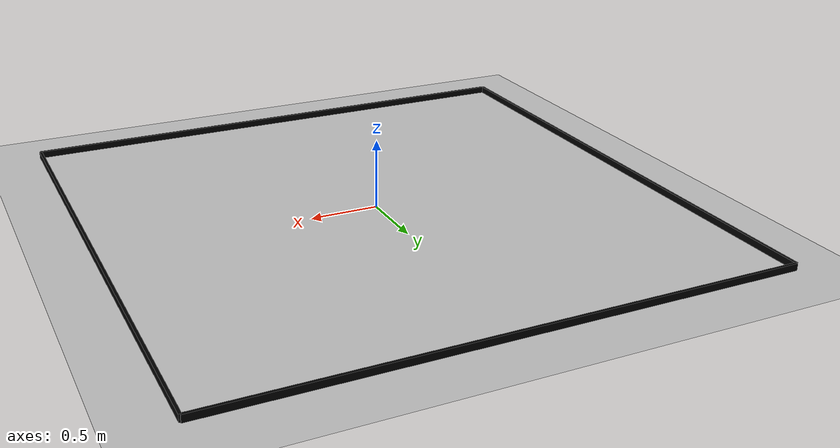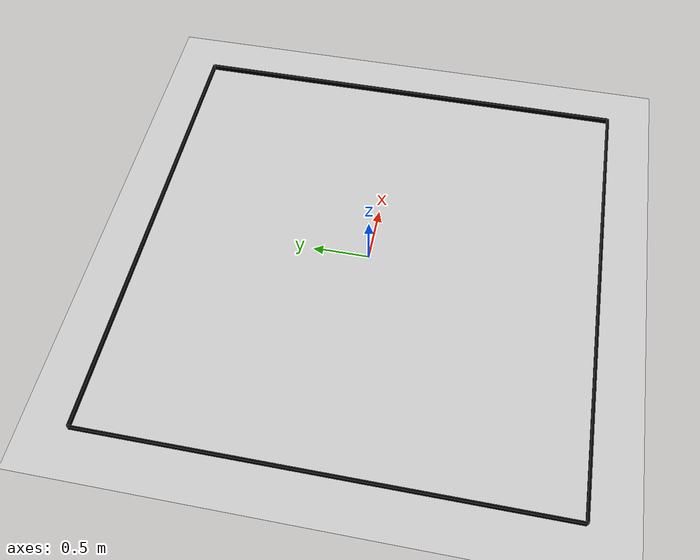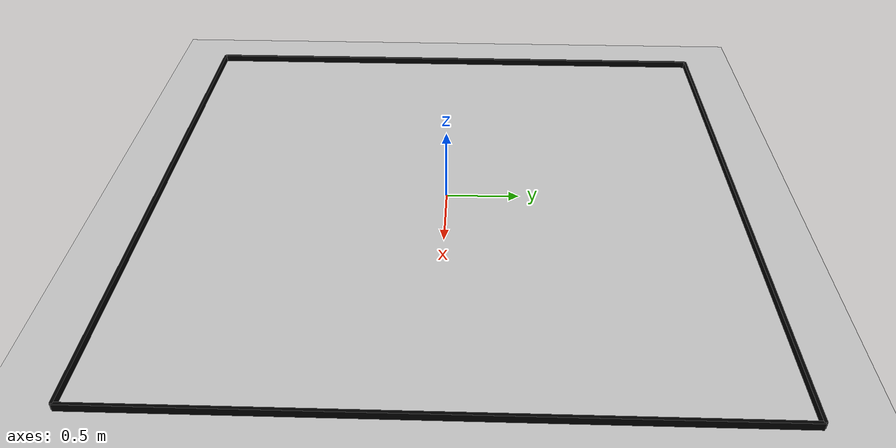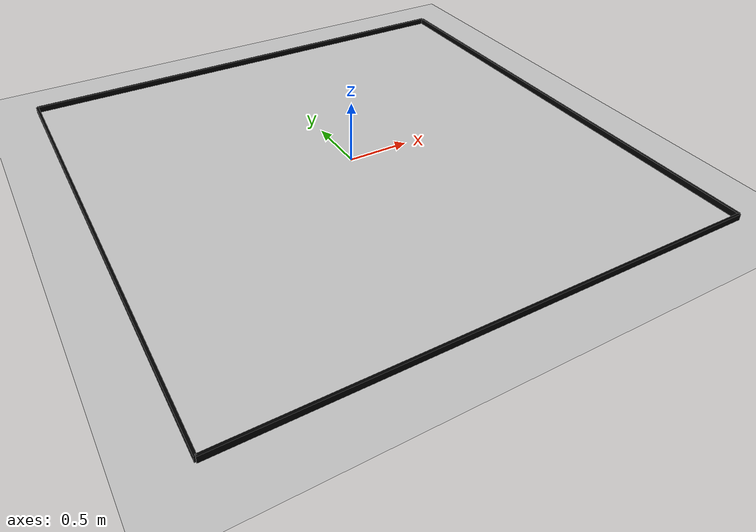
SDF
<?xml version="1.0" ?>
<sdf version="1.6">
  <world name="push_box_world">

    <!-- 地面和平行光 -->
    <include>
      <uri>model://ground_plane</uri>
    </include>

    <include>
      <uri>model://sun</uri>
    </include>

    <!-- 黑色边界框：[-2.0, 2.0] 方形边界，用四条细长 box 组成 -->
    <model name="boundary_frame">
      <static>true</static>
      <!-- 边界高度略抬起一点，避免和地面 z=0 完全重合 -->
      <pose>0 0 0.02 0 0 0</pose>

      <link name="frame_link">

        <!-- 上边：y = 2.0，长度 4.0，厚度 0.02，高度 0.05 -->
        <visual name="top_visual">
          <pose>0 2.0 0 0 0 0</pose>
          <geometry>
            <box>
              <size>4.0 0.02 0.05</size>
            </box>
          </geometry>
          <material>
            <ambient>0 0 0 1</ambient>
            <diffuse>0 0 0 1</diffuse>
          </material>
        </visual>
        <collision name="top_collision">
          <pose>0 2.0 0 0 0 0</pose>
          <geometry>
            <box>
              <size>4.0 0.02 0.05</size>
            </box>
          </geometry>
        </collision>

        <!-- 下边：y = -2.0 -->
        <visual name="bottom_visual">
          <pose>0 -2.0 0 0 0 0</pose>
          <geometry>
            <box>
              <size>4.0 0.02 0.05</size>
            </box>
          </geometry>
          <material>
            <ambient>0 0 0 1</ambient>
            <diffuse>0 0 0 1</diffuse>
          </material>
        </visual>
        <collision name="bottom_collision">
          <pose>0 -2.0 0 0 0 0</pose>
          <geometry>
            <box>
              <size>4.0 0.02 0.05</size>
            </box>
          </geometry>
        </collision>

        <!-- 左边：x = -2.0 -->
        <visual name="left_visual">
          <pose>-2.0 0 0 0 0 0</pose>
          <geometry>
            <box>
              <size>0.02 4.0 0.05</size>
            </box>
          </geometry>
          <material>
            <ambient>0 0 0 1</ambient>
            <diffuse>0 0 0 1</diffuse>
          </material>
        </visual>
        <collision name="left_collision">
          <pose>-2.0 0 0 0 0 0</pose>
          <geometry>
            <box>
              <size>0.02 4.0 0.05</size>
            </box>
          </geometry>
        </collision>

        <!-- 右边：x = 2.0 -->
        <visual name="right_visual">
          <pose>2.0 0 0 0 0 0</pose>
          <geometry>
            <box>
              <size>0.02 4.0 0.05</size>
            </box>
          </geometry>
          <material>
            <ambient>0 0 0 1</ambient>
            <diffuse>0 0 0 1</diffuse>
          </material>
        </visual>
        <collision name="right_collision">
          <pose>2.0 0 0 0 0 0</pose>
          <geometry>
            <box>
              <size>0.02 4.0 0.05</size>
            </box>
          </geometry>
        </collision>

      </link>
    </model>

  </world>
</sdf>
